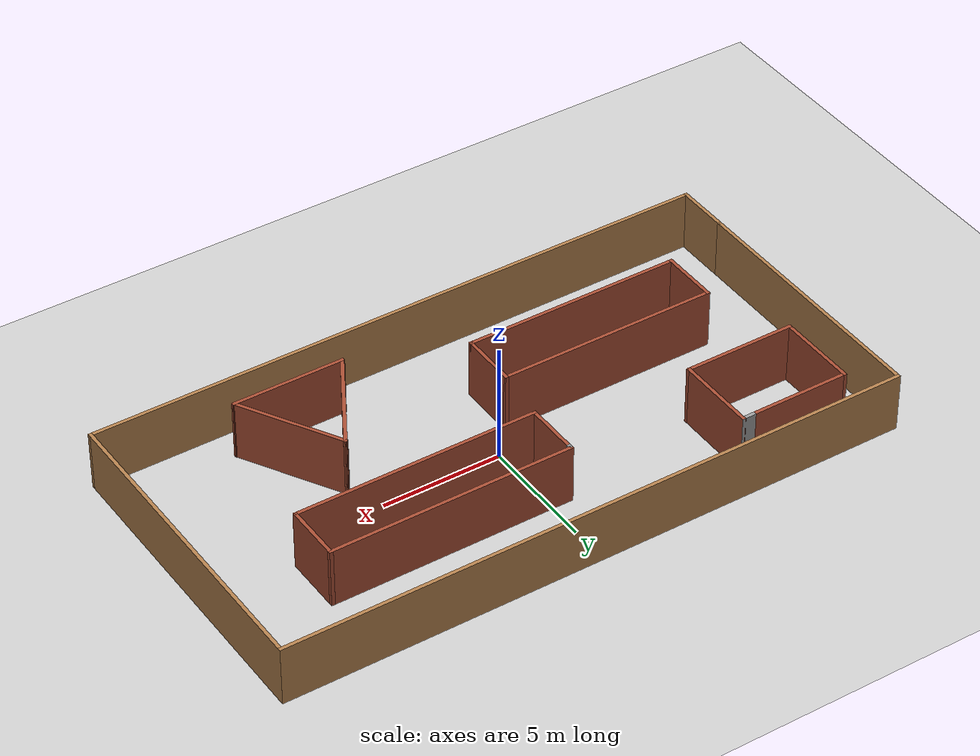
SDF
<sdf version="1.6">
 <world name="default">
  <light name="sun" type="directional">
   <pose>0 0 10 0 -0 0</pose>
   <diffuse>0.8 0.8 0.8 1</diffuse>
   <specular>0.2 0.2 0.2 1</specular>
   <attenuation>
    <range>1000</range>
    <constant>0.9</constant>
    <linear>0.01</linear>
    <quadratic>0.001</quadratic>
   </attenuation>
   <direction>-0.5 0.1 -0.9</direction>
  </light>
  <model name="ground_plane">
   <static>1</static>
   <link name="link">
    <collision name="collision">
     <geometry><plane><normal>0 0 1</normal><size>100 100</size></plane></geometry>
     <surface><friction><ode><mu>100</mu><mu2>50</mu2></ode></friction></surface>
    </collision>
    <visual name="visual">
     <cast_shadows>0</cast_shadows>
     <geometry><plane><normal>0 0 1</normal><size>100 100</size></plane></geometry>
     <material>
      <script><uri>file://media/materials/scripts/gazebo.material</uri><name>Gazebo/Grey</name></script>
     </material>
    </visual>
   </link>
  </model>
  <gravity>0 0 -9.8</gravity>
  <magnetic_field>6e-06 2.3e-05 -4.2e-05</magnetic_field>
  <atmosphere type="adiabatic"/>
  <physics name="default_physics" default="0" type="ode">
   <max_step_size>0.001</max_step_size>
   <real_time_factor>1</real_time_factor>
   <real_time_update_rate>1000</real_time_update_rate>
  </physics>
  <scene><ambient>0.4 0.4 0.4 1</ambient><background>0.7 0.7 0.7 1</background><shadows>1</shadows></scene>
  <spherical_coordinates>
   <surface_model>EARTH_WGS84</surface_model>
   <latitude_deg>0</latitude_deg>
   <longitude_deg>0</longitude_deg>
   <elevation>0</elevation>
   <heading_deg>0</heading_deg>
  </spherical_coordinates>
  <model name="Assignment1_world">
   <pose>0.033707 -0.004978 0 0 -0 0</pose>
   <link name="Wall_12">
    <collision name="Wall_12_Collision">
     <geometry><box><size>11.25 0.15 2.5</size></box></geometry>
     <pose>0 0 1.25 0 -0 0</pose>
    </collision>
    <visual name="Wall_12_Visual">
     <pose>0 0 1.25 0 -0 0</pose>
     <geometry><box><size>11.25 0.15 2.5</size></box></geometry>
     <material>
      <script><uri>file://media/materials/scripts/gazebo.material</uri><name>Gazebo/Wood</name></script>
      <ambient>1 1 1 1</ambient>
     </material>
     <meta><layer>0</layer></meta>
    </visual>
    <pose>-13.175 1.125 0 0 -0 1.5708</pose>
   </link>
   <link name="Wall_13">
    <collision name="Wall_13_Collision">
     <geometry><box><size>26.5 0.15 2.5</size></box></geometry>
     <pose>0 0 1.25 0 -0 0</pose>
    </collision>
    <visual name="Wall_13_Visual">
     <pose>0 0 1.25 0 -0 0</pose>
     <geometry><box><size>26.5 0.15 2.5</size></box></geometry>
     <material>
      <script><uri>file://media/materials/scripts/gazebo.material</uri><name>Gazebo/Wood</name></script>
      <ambient>1 1 1 1</ambient>
     </material>
     <meta><layer>0</layer></meta>
    </visual>
    <pose>-0 6.675 0 0 -0 0</pose>
   </link>
   <link name="Wall_14">
    <collision name="Wall_14_Collision">
     <geometry><box><size>13.5 0.15 2.5</size></box></geometry>
     <pose>0 0 1.25 0 -0 0</pose>
    </collision>
    <visual name="Wall_14_Visual">
     <pose>0 0 1.25 0 -0 0</pose>
     <geometry><box><size>13.5 0.15 2.5</size></box></geometry>
     <material>
      <script><uri>file://media/materials/scripts/gazebo.material</uri><name>Gazebo/Wood</name></script>
      <ambient>1 1 1 1</ambient>
     </material>
     <meta><layer>0</layer></meta>
    </visual>
    <pose>13.175 0 0 0 -0 -1.5708</pose>
   </link>
   <link name="Wall_15">
    <collision name="Wall_15_Collision">
     <geometry><box><size>26.5 0.15 2.5</size></box></geometry>
     <pose>0 0 1.25 0 -0 0</pose>
    </collision>
    <visual name="Wall_15_Visual">
     <pose>0 0 1.25 0 -0 0</pose>
     <geometry><box><size>26.5 0.15 2.5</size></box></geometry>
     <material>
      <script><uri>file://media/materials/scripts/gazebo.material</uri><name>Gazebo/Wood</name></script>
      <ambient>1 1 1 1</ambient>
     </material>
     <meta><layer>0</layer></meta>
    </visual>
    <pose>-0 -6.675 0 0 -0 3.14159</pose>
   </link>
   <link name="Wall_16">
    <collision name="Wall_16_Collision">
     <geometry><box><size>2.4 0.15 2.5</size></box></geometry>
     <pose>0 0 1.25 0 -0 0</pose>
    </collision>
    <visual name="Wall_16_Visual">
     <pose>0 0 1.25 0 -0 0</pose>
     <geometry><box><size>2.4 0.15 2.5</size></box></geometry>
     <material>
      <script><uri>file://media/materials/scripts/gazebo.material</uri><name>Gazebo/Wood</name></script>
      <ambient>1 1 1 1</ambient>
     </material>
     <meta><layer>0</layer></meta>
    </visual>
    <pose>-13.175 -5.55 0 0 -0 1.5708</pose>
   </link>
   <link name="Wall_19">
    <collision name="Wall_19_Collision">
     <geometry><box><size>4 0.15 2.5</size></box></geometry>
     <pose>0 0 1.25 0 -0 0</pose>
    </collision>
    <visual name="Wall_19_Visual">
     <pose>0 0 1.25 0 -0 0</pose>
     <geometry><box><size>4 0.15 2.5</size></box></geometry>
     <material>
      <script><uri>file://media/materials/scripts/gazebo.material</uri><name>Gazebo/Bricks</name></script>
      <ambient>1 1 1 1</ambient>
     </material>
     <meta><layer>0</layer></meta>
    </visual>
    <pose>-9.52335 5.49935 0 0 -0 0</pose>
   </link>
   <link name="Wall_20">
    <collision name="Wall_20_Collision">
     <geometry><box><size>0.75 0.15 2.5</size></box></geometry>
     <pose>0 0 1.25 0 -0 0</pose>
    </collision>
    <visual name="Wall_20_Visual">
     <pose>0 0 1.25 0 -0 0</pose>
     <geometry><box><size>0.75 0.15 2.5</size></box></geometry>
     <material>
      <script><uri>file://media/materials/scripts/gazebo.material</uri><name>Gazebo/Grey</name></script>
      <ambient>1 1 1 1</ambient>
     </material>
     <meta><layer>0</layer></meta>
    </visual>
    <pose>-7.29835 5.49935 0 0 -0 0</pose>
   </link>
   <link name="Wall_21">
    <collision name="Wall_21_Collision">
     <geometry><box><size>3.5 0.15 2.5</size></box></geometry>
     <pose>0 0 1.25 0 -0 0</pose>
    </collision>
    <visual name="Wall_21_Visual">
     <pose>0 0 1.25 0 -0 0</pose>
     <geometry><box><size>3.5 0.15 2.5</size></box></geometry>
     <material>
      <script><uri>file://media/materials/scripts/gazebo.material</uri><name>Gazebo/Bricks</name></script>
      <ambient>1 1 1 1</ambient>
     </material>
     <meta><layer>0</layer></meta>
    </visual>
    <pose>-6.99835 3.82435 0 0 -0 -1.5708</pose>
   </link>
   <link name="Wall_33">
    <collision name="Wall_33_Collision">
     <geometry><box><size>4.75 0.15 2.5</size></box></geometry>
     <pose>0 0 1.25 0 -0 0</pose>
    </collision>
    <visual name="Wall_33_Visual">
     <pose>0 0 1.25 0 -0 0</pose>
     <geometry><box><size>4.75 0.15 2.5</size></box></geometry>
     <material>
      <script><uri>file://media/materials/scripts/gazebo.material</uri><name>Gazebo/Bricks</name></script>
      <ambient>1 1 1 1</ambient>
     </material>
     <meta><layer>0</layer></meta>
    </visual>
    <pose>-9.29835 2.14935 0 0 -0 3.14159</pose>
   </link>
   <link name="Wall_34">
    <collision name="Wall_34_Collision">
     <geometry><box><size>3.5 0.15 2.5</size></box></geometry>
     <pose>0 0 1.25 0 -0 0</pose>
    </collision>
    <visual name="Wall_34_Visual">
     <pose>0 0 1.25 0 -0 0</pose>
     <geometry><box><size>3.5 0.15 2.5</size></box></geometry>
     <material>
      <script><uri>file://media/materials/scripts/gazebo.material</uri><name>Gazebo/Bricks</name></script>
      <ambient>1 1 1 1</ambient>
     </material>
     <meta><layer>0</layer></meta>
    </visual>
    <pose>-11.5983 3.82435 0 0 -0 1.5708</pose>
   </link>
   <link name="Wall_36">
    <collision name="Wall_36_Collision">
     <geometry><box><size>2.25 0.15 2.5</size></box></geometry>
     <pose>0 0 1.25 0 -0 0</pose>
    </collision>
    <visual name="Wall_36_Visual">
     <pose>0 0 1.25 0 -0 0</pose>
     <geometry><box><size>2.25 0.15 2.5</size></box></geometry>
     <material>
      <script><uri>file://media/materials/scripts/gazebo.material</uri><name>Gazebo/Bricks</name></script>
      <ambient>1 1 1 1</ambient>
     </material>
     <meta><layer>0</layer></meta>
    </visual>
    <pose>-0.873561 2.11908 0 0 -0 -1.5708</pose>
   </link>
   <link name="Wall_37">
    <collision name="Wall_37_Collision">
     <geometry><box><size>10.25 0.15 2.5</size></box></geometry>
     <pose>0 0 1.25 0 -0 0</pose>
    </collision>
    <visual name="Wall_37_Visual">
     <pose>0 0 1.25 0 -0 0</pose>
     <geometry><box><size>10.25 0.15 2.5</size></box></geometry>
     <material>
      <script><uri>file://media/materials/scripts/gazebo.material</uri><name>Gazebo/Bricks</name></script>
      <ambient>1 1 1 1</ambient>
     </material>
     <meta><layer>0</layer></meta>
    </visual>
    <pose>4.17644 1.06908 0 0 -0 0</pose>
   </link>
   <link name="Wall_38">
    <collision name="Wall_38_Collision">
     <geometry><box><size>2.5 0.15 2.5</size></box></geometry>
     <pose>0 0 1.25 0 -0 0</pose>
    </collision>
    <visual name="Wall_38_Visual">
     <pose>0 0 1.25 0 -0 0</pose>
     <geometry><box><size>2.5 0.15 2.5</size></box></geometry>
     <material>
      <script><uri>file://media/materials/scripts/gazebo.material</uri><name>Gazebo/Bricks</name></script>
      <ambient>1 1 1 1</ambient>
     </material>
     <meta><layer>0</layer></meta>
    </visual>
    <pose>9.22644 2.24408 0 0 -0 1.5708</pose>
   </link>
   <link name="Wall_39">
    <collision name="Wall_39_Collision">
     <geometry><box><size>10.25 0.15 2.5</size></box></geometry>
     <pose>0 0 1.25 0 -0 0</pose>
    </collision>
    <visual name="Wall_39_Visual">
     <pose>0 0 1.25 0 -0 0</pose>
     <geometry><box><size>10.25 0.15 2.5</size></box></geometry>
     <material>
      <script><uri>file://media/materials/scripts/gazebo.material</uri><name>Gazebo/Bricks</name></script>
      <ambient>1 1 1 1</ambient>
     </material>
     <meta><layer>0</layer></meta>
    </visual>
    <pose>4.17644 3.41908 0 0 -0 3.14159</pose>
   </link>
   <link name="Wall_40">
    <collision name="Wall_40_Collision">
     <geometry><box><size>0.15 0.15 2.5</size></box></geometry>
     <pose>0 0 1.25 0 -0 0</pose>
    </collision>
    <visual name="Wall_40_Visual">
     <pose>0 0 1.25 0 -0 0</pose>
     <geometry><box><size>0.15 0.15 2.5</size></box></geometry>
     <material>
      <script><uri>file://media/materials/scripts/gazebo.material</uri><name>Gazebo/Grey</name></script>
      <ambient>1 1 1 1</ambient>
     </material>
     <meta><layer>0</layer></meta>
    </visual>
    <pose>-0.873561 3.41908 0 0 -0 0</pose>
   </link>
   <link name="Wall_41">
    <collision name="Wall_41_Collision">
     <geometry><box><size>0.4 0.15 2.5</size></box></geometry>
     <pose>0 0 1.25 0 -0 0</pose>
    </collision>
    <visual name="Wall_41_Visual">
     <pose>0 0 1.25 0 -0 0</pose>
     <geometry><box><size>0.4 0.15 2.5</size></box></geometry>
     <material>
      <script><uri>file://media/materials/scripts/gazebo.material</uri><name>Gazebo/Grey</name></script>
      <ambient>1 1 1 1</ambient>
     </material>
     <meta><layer>0</layer></meta>
    </visual>
    <pose>-0.873561 3.29408 0 0 -0 -1.5708</pose>
   </link>
   <link name="Wall_43">
    <collision name="Wall_43_Collision">
     <geometry><box><size>2.5 0.15 2.5</size></box></geometry>
     <pose>0 0 1.25 0 -0 0</pose>
    </collision>
    <visual name="Wall_43_Visual">
     <pose>0 0 1.25 0 -0 0</pose>
     <geometry><box><size>2.5 0.15 2.5</size></box></geometry>
     <material>
      <script><uri>file://media/materials/scripts/gazebo.material</uri><name>Gazebo/Bricks</name></script>
      <ambient>1 1 1 1</ambient>
     </material>
     <meta><layer>0</layer></meta>
    </visual>
    <pose>-10.2368 -2.36835 0 0 -0 -1.5708</pose>
   </link>
   <link name="Wall_44">
    <collision name="Wall_44_Collision">
     <geometry><box><size>9.25 0.15 2.5</size></box></geometry>
     <pose>0 0 1.25 0 -0 0</pose>
    </collision>
    <visual name="Wall_44_Visual">
     <pose>0 0 1.25 0 -0 0</pose>
     <geometry><box><size>9.25 0.15 2.5</size></box></geometry>
     <material>
      <script><uri>file://media/materials/scripts/gazebo.material</uri><name>Gazebo/Bricks</name></script>
      <ambient>1 1 1 1</ambient>
     </material>
     <meta><layer>0</layer></meta>
    </visual>
    <pose>-5.68683 -3.54335 0 0 -0 0</pose>
   </link>
   <link name="Wall_45">
    <collision name="Wall_45_Collision">
     <geometry><box><size>2.5 0.15 2.5</size></box></geometry>
     <pose>0 0 1.25 0 -0 0</pose>
    </collision>
    <visual name="Wall_45_Visual">
     <pose>0 0 1.25 0 -0 0</pose>
     <geometry><box><size>2.5 0.15 2.5</size></box></geometry>
     <material>
      <script><uri>file://media/materials/scripts/gazebo.material</uri><name>Gazebo/Bricks</name></script>
      <ambient>1 1 1 1</ambient>
     </material>
     <meta><layer>0</layer></meta>
    </visual>
    <pose>-1.13683 -2.36835 0 0 -0 1.5708</pose>
   </link>
   <link name="Wall_46">
    <collision name="Wall_46_Collision">
     <geometry><box><size>9.25 0.15 2.5</size></box></geometry>
     <pose>0 0 1.25 0 -0 0</pose>
    </collision>
    <visual name="Wall_46_Visual">
     <pose>0 0 1.25 0 -0 0</pose>
     <geometry><box><size>9.25 0.15 2.5</size></box></geometry>
     <material>
      <script><uri>file://media/materials/scripts/gazebo.material</uri><name>Gazebo/Bricks</name></script>
      <ambient>1 1 1 1</ambient>
     </material>
     <meta><layer>0</layer></meta>
    </visual>
    <pose>-5.68683 -1.19335 0 0 -0 3.14159</pose>
   </link>
   <link name="Wall_48">
    <collision name="Wall_48_Collision">
     <geometry><box><size>4.75 0.15 2.5</size></box></geometry>
     <pose>0 0 1.25 0 -0 0</pose>
    </collision>
    <visual name="Wall_48_Visual">
     <pose>0 0 1.25 0 -0 0</pose>
     <geometry><box><size>4.75 0.15 2.5</size></box></geometry>
     <material>
      <script><uri>file://media/materials/scripts/gazebo.material</uri><name>Gazebo/Bricks</name></script>
      <ambient>1 1 1 1</ambient>
     </material>
     <meta><layer>0</layer></meta>
    </visual>
    <pose>4.53247 -3.35112 0 0 -0 1.0472</pose>
   </link>
   <link name="Wall_51">
    <collision name="Wall_51_Collision">
     <geometry><box><size>4.75 0.15 2.5</size></box></geometry>
     <pose>0 0 1.25 0 -0 0</pose>
    </collision>
    <visual name="Wall_51_Visual">
     <pose>0 0 1.25 0 -0 0</pose>
     <geometry><box><size>4.75 0.15 2.5</size></box></geometry>
     <material>
      <script><uri>file://media/materials/scripts/gazebo.material</uri><name>Gazebo/Bricks</name></script>
      <ambient>1 1 1 1</ambient>
     </material>
     <meta><layer>0</layer></meta>
    </visual>
    <pose>6.83247 -3.35112 0 0 -0 -1.0472</pose>
   </link>
   <link name="Wall_52">
    <collision name="Wall_52_Collision">
     <geometry><box><size>4.75 0.15 2.5</size></box></geometry>
     <pose>0 0 1.25 0 -0 0</pose>
    </collision>
    <visual name="Wall_52_Visual">
     <pose>0 0 1.25 0 -0 0</pose>
     <geometry><box><size>4.75 0.15 2.5</size></box></geometry>
     <material>
      <script><uri>file://media/materials/scripts/gazebo.material</uri><name>Gazebo/Bricks</name></script>
      <ambient>1 1 1 1</ambient>
     </material>
     <meta><layer>0</layer></meta>
    </visual>
    <pose>5.68247 -5.34298 0 0 -0 3.14159</pose>
   </link>
   <static>1</static>
  </model>
 </world>
</sdf>
